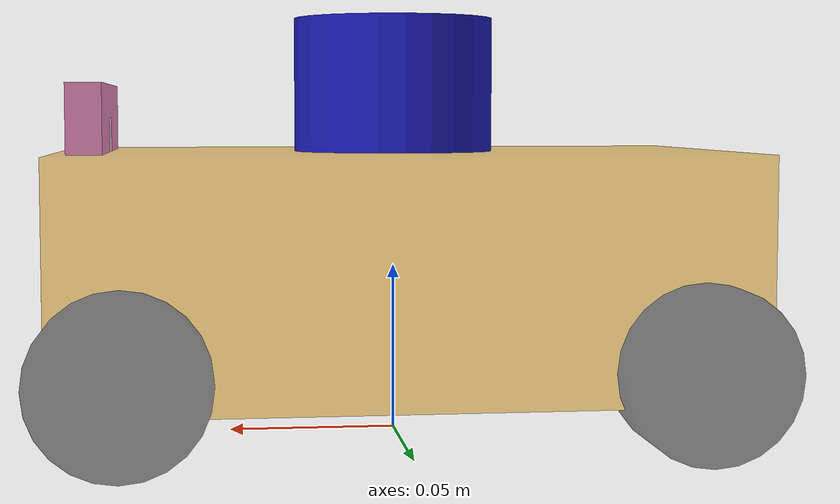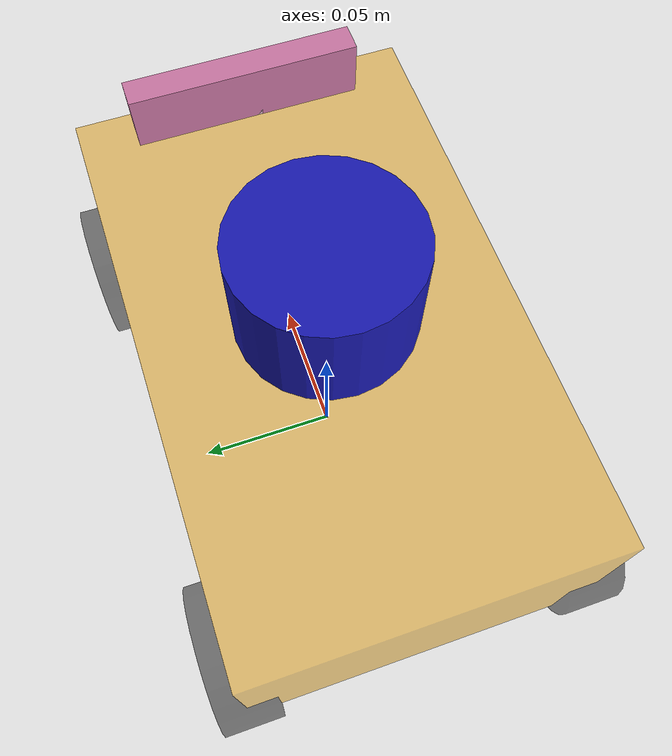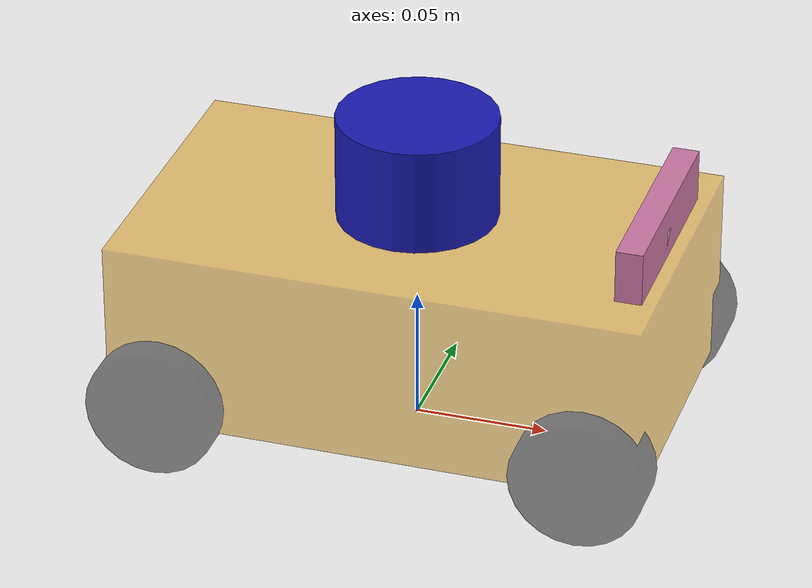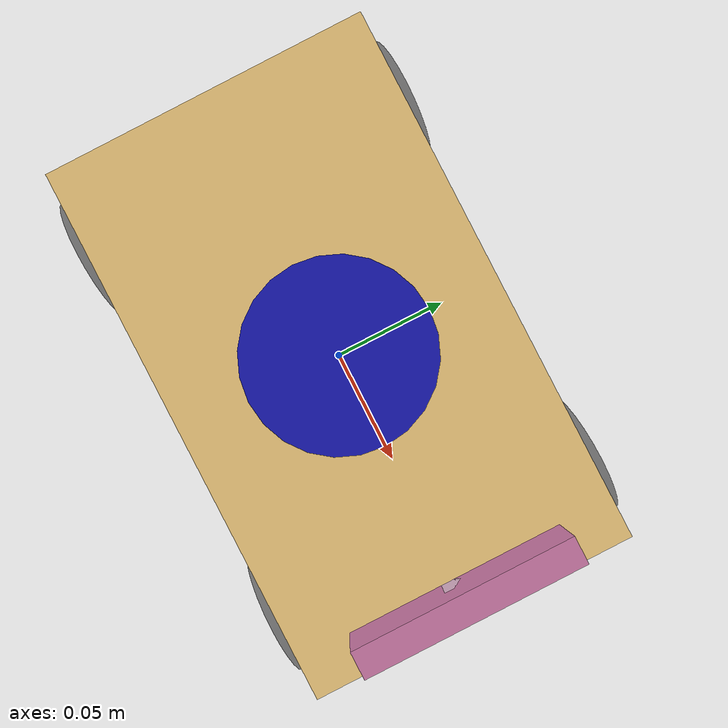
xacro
<!-- 主实现 -->
<robot xmlns:xacro="http://www.ros.org/wiki/xacro" name="small_car">

    <xacro:property name="laser_visual" value="false" />
    <xacro:property name="camera_visual" value="false" />
    <xacro:property name="imu_visual" value="false" />
    <xacro:property name="update_rate" value="1000" />

    <xacro:include filename="$(find simulat)/urdf/car_base_urdf.xacro"/>
    <xacro:include filename="$(find simulat)/urdf/car_camera_urdf.xacro"/>
    <xacro:include filename="$(find simulat)/urdf/car_laser_urdf.xacro"/>
    <xacro:include filename="$(find simulat)/urdf/car_imu_urdf.xacro"/>

</robot>

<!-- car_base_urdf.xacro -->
<!-- 底盘实现 -->
<robot xmlns:xacro="http://www.ros.org/wiki/xacro">
    <xacro:property name="PI" value="3.1415926" />

    <xacro:property name="car_length" value="0.2" />
    <xacro:property name="car_width" value="0.12" />
    <xacro:property name="car_height" value="0.07" />

    <xacro:property name="wheel_radius" value="0.025" />
    <xacro:property name="wheel_length" value="0.02" />

    <xacro:property name="wheel_joint_x" value="0.08" />
    <xacro:property name="wheel_joint_y" value="${car_width / 2}" />
    <xacro:property name="wheel_joint_z" value="${-(car_height / 2 + distance - wheel_radius)}" />

    <xacro:property name="distance" value="0.015" />

    <material name="yellow">
        <color rgba="0.9 0.6 0.0 0.5"/>
    </material>
    <material name="black">
        <color rgba="0.0 0.0 0.0 0.5"/>
    </material>
    <material name="lucency">
        <color rgba="0.0 0.0 0.0 0.0"/>
    </material>

    <link name="base_footprint">
        <!-- 形状描述 -->
        <visual>
            <geometry>
                <box size="0.001 0.001 0.001"/>
            </geometry>
            <material name="lucency"/>
        </visual>
        <!-- 碰撞描述 -->
        <collision>
            <geometry>
                <box size="0.001 0.001 0.001"/>
            </geometry>
        </collision>
        <!-- 物理信息 -->
        <inertial>
            <mass value="0.001"/>
            <inertia ixx="0.0" ixy="0.0" ixz="0.0" iyy="0.0" iyz="0.0" izz="0.0"/>
        </inertial>
    </link>

    <link name="base_link">
        <!-- 形状描述 -->
        <visual>
            <geometry>
                <box size="${car_length} ${car_width} ${car_height} "/>
            </geometry>
            <material name="yellow"/>
        </visual>
        <!-- 碰撞描述 -->
        <collision>
            <geometry>
                <box size="${car_length} ${car_width} ${car_height} "/>
            </geometry>
        </collision>
        <!-- 物理信息 -->
        <inertial>
            <mass value="0.5"/>
            <inertia ixx="0.0" ixy="0.0" ixz="0.0" iyy="0.0" iyz="0.0" izz="0.0"/>
        </inertial>
    </link>

    <joint name="base_link2base_footprint" type="fixed">
        <parent link="base_footprint"/>
        <child link="base_link"/>
        <origin xyz="0.0 0.0 ${car_height / 2 + distance}"/>
    </joint>

    <xacro:macro name="wheel_func" params="link_name front_flag left_flag">
        <link name="${link_name}">
            <visual>
                <geometry>
                    <cylinder radius="${wheel_radius}" length="${wheel_length}"/>
                </geometry>
                <material name="black"/>
                <origin rpy="1.57 0.0 0.0"/>
            </visual>

            <collision>
                <geometry>
                    <cylinder radius="${wheel_radius}" length="${wheel_length}"/>
                </geometry>
            </collision>

            <inertial>
                <mass value="0.1"/>
                <inertia ixx="0.0" ixy="0.0" ixz="0.0" iyy="0.0" iyz="0.0" izz="0.0"/>
            </inertial>
        </link>
        <joint name="${link_name}2base_link" type="continuous">
            <parent link="base_link"/>
            <child link="${link_name}"/>
            <origin xyz="${wheel_joint_x * front_flag} ${wheel_joint_y * left_flag} ${wheel_joint_z}"/>
            <axis xyz="0 1 0"/>
        </joint>
    </xacro:macro>

    <xacro:wheel_func link_name="front_left" front_flag="1" left_flag="1" />
    <xacro:wheel_func link_name="front_right" front_flag="1" left_flag="-1" />
    <xacro:wheel_func link_name="back_left" front_flag="-1" left_flag="1" />
    <xacro:wheel_func link_name="back_right" front_flag="-1" left_flag="-1" />

    <xacro:macro name="wheel_gazebo_func" params="link_name">
        <gazebo reference="${link_name}_gazebo">
            <mu1>0.5</mu1>
            <mu2>0.5</mu2>
            <kp>5000000.0</kp>
            <kd>10.0</kd>
            <minDepth>0.001</minDepth>
            <maxVel>1.0</maxVel>
            <fdir1>1 0 0</fdir1>
            <material>Gazebo/DarkGrey</material>
        </gazebo>
    </xacro:macro>

    <xacro:wheel_gazebo_func link_name="front_left" />
    <xacro:wheel_gazebo_func link_name="front_right" />
    <xacro:wheel_gazebo_func link_name="back_left" />
    <xacro:wheel_gazebo_func link_name="back_right" />

    <gazebo reference = "base_link">
        <material>Gazebo/DarkGrey</material>
    </gazebo>

   <!-- 麦轮控制器 -->
    <gazebo>
        <plugin name="mecanum_controller" filename="libgazebo_ros_planar_move.so">
            <commandTopic>cmd_vel</commandTopic>
            <odometryTopic>odom</odometryTopic>
            <odometryFrame>odom</odometryFrame>
            <leftFrontJoint>front_left2base_link</leftFrontJoint>
            <rightFrontJoint>front_right2base_link</rightFrontJoint>
            <leftRearJoint>back_left2base_link</leftRearJoint>
            <rightRearJoint>back_right2base_link</rightRearJoint>
            <odometryRate>100</odometryRate>
            <robotBaseFrame>base_footprint</robotBaseFrame>
            <broadcastTF>1</broadcastTF>
        </plugin>
    </gazebo>

</robot>

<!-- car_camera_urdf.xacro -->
<!-- 摄像头实现 -->
<robot xmlns:xacro="http://www.ros.org/wiki/xacro">
    <xacro:property name="camera_len" value="0.01" />
    <xacro:property name="camera_width" value="0.08" />
    <xacro:property name="camera_high" value="0.02" />

    <xacro:property name="camera_joint_x" value="${car_length / 2 - 0.01}" />
    <xacro:property name="camera_joint_y" value="0.0" />
    <xacro:property name="camera_joint_z" value="${camera_high / 2 + car_height / 2}" />

    <link name="camera">
        <visual>
            <geometry>
                <box size="${camera_len} ${camera_width} ${camera_high}"/>
            </geometry>
        </visual>
    </link>

    <joint name="camera2base_link" type="fixed">
        <parent link="base_link"/>
        <child link="camera"/>
        <origin xyz="${camera_joint_x} ${camera_joint_y} ${camera_joint_z}"/>
    </joint>

    <gazebo reference="camera">
      <sensor type="camera" name="camera1">
        <update_rate>30.0</update_rate>
        <camera name="head">
          <horizontal_fov>1.3962634</horizontal_fov>
          <image>
            <width>800</width>
            <height>800</height>
            <format>R8G8B8</format>
          </image>
          <clip>
            <near>0.02</near>
            <far>300</far>
          </clip>
          <noise>
            <type>gaussian</type>
            <mean>0.0</mean>
            <stddev>0.007</stddev>
          </noise>
        </camera>
        <plugin name="camera_controller" filename="libgazebo_ros_camera.so">
          <alwaysOn>true</alwaysOn>
          <updateRate>0.0</updateRate>
          <cameraName>rrbot/camera1</cameraName>
          <imageTopicName>image_raw</imageTopicName>
          <cameraInfoTopicName>camera_info</cameraInfoTopicName>
          <frameName>camera_link</frameName>
          <hackBaseline>0.07</hackBaseline>
          <distortionK1>0.0</distortionK1>
          <distortionK2>0.0</distortionK2>
          <distortionK3>0.0</distortionK3>
          <distortionT1>0.0</distortionT1>
          <distortionT2>0.0</distortionT2>
        </plugin>
      </sensor>
    </gazebo>

</robot>

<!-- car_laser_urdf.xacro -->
<!-- 雷达实现 -->
<robot xmlns:xacro="http://www.ros.org/wiki/xacro">
  <xacro:property name="laser_radius" value="0.03" />
  <xacro:property name="laser_len" value="0.04" />

  <xacro:property name="laser_joint_x" value="0" />
  <xacro:property name="laser_joint_y" value="0" />
  <xacro:property name="laser_joint_z" value="${car_height / 2 + laser_len / 2}" />

  <link name="laser">
      <visual>
          <geometry>
              <cylinder radius="${laser_radius}" length="${laser_len}"/>
          </geometry>
          <material name="blue">
              <color rgba="0.1 0.1 0.7 1.0"/>
          </material>
      </visual>
  </link>

  <joint name="laser2base_link" type="fixed">
      <parent link="base_link"/>
      <child link="laser"/>
      <origin xyz="${laser_joint_x} ${laser_joint_y} ${laser_joint_z}"/>
  </joint>

  <gazebo reference="laser">
    <sensor type="ray" name="laser">
      <pose>${laser_joint_x} ${laser_joint_y} ${laser_joint_z} 0 0 0</pose>
      <visualize>false</visualize>
      <update_rate>5</update_rate>
      <ray>
        <scan>
          <horizontal>
            <samples>360</samples>
            <resolution>1.000000</resolution>
            <min_angle>0.000000</min_angle>
            <max_angle>6.280000</max_angle>
          </horizontal>
        </scan>
        <range>
          <min>0.120000</min>
          <max>3.5</max>
          <resolution>0.015000</resolution>
        </range>
        <noise>
          <type>gaussian</type>
          <mean>0.0</mean>
          <stddev>0.01</stddev>
        </noise>
    </ray>

      <plugin name="laser_controller" filename="libgazebo_ros_ray_sensor.so">
        <ros>
          <remapping>~/out:=scan</remapping>
        </ros>
        <output_type>sensor_msgs/LaserScan</output_type>
        <frameName>laser</frameName>
      </plugin>

    </sensor>
  </gazebo>

</robot>

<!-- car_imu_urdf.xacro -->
<!-- imu的实现 -->
<robot xmlns:xacro="http://www.ros.org/wiki/xacro">
    <xacro:property name="imu_x" value="0.01" />
    <xacro:property name="imu_y" value="0.01" />
    <xacro:property name="imu_z" value="0.01" />

    <xacro:property name="imu_joint_x" value="${car_length / 2 - 0.01}" />
    <xacro:property name="imu_joint_y" value="0.0" />
    <xacro:property name="imu_joint_z" value="${imu_z / 2 + car_height / 2}" />

    <material name="white">
        <color rgba="1.0 1.0 1.0 0.5"/>
    </material>

    <link name="imu">
        <visual>
            <geometry>
                <box size="${imu_x} ${imu_y} ${imu_z}"/>
            </geometry>
            <material name="white"/>
        </visual>
    </link>

    <joint name="imu2base_link" type="fixed">
        <parent link="base_link"/>
        <child link="imu"/>
        <origin xyz="${imu_joint_x} ${imu_joint_y} ${imu_joint_z}"/>
    </joint>

    <gazebo reference = "imu">
        <sensor name="imu_sensor" type="imu">
            <update_rate>100</update_rate>
            <always_on>true</always_on>
            <plugin name="imu" filename="libgazebo_ros_imu_sensor.so">
                <alwaysOn>true</alwaysOn>
                <bodyName>base_link</bodyName>
                <topicName>imu</topicName>
                <serviceName>imu_service</serviceName>
                <gaussianNoise>0.0</gaussianNoise>
                <updateRate>100.0</updateRate>
            </plugin>
        </sensor>
        <material>Gazebo/FlatBlack</material>
    </gazebo>
</robot>
